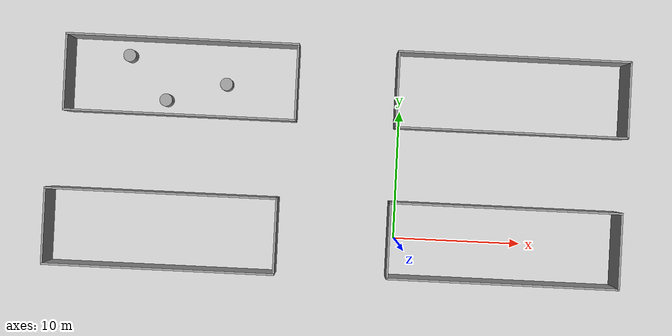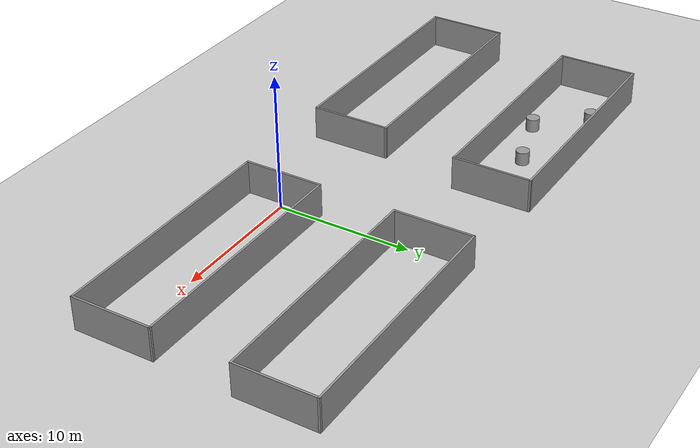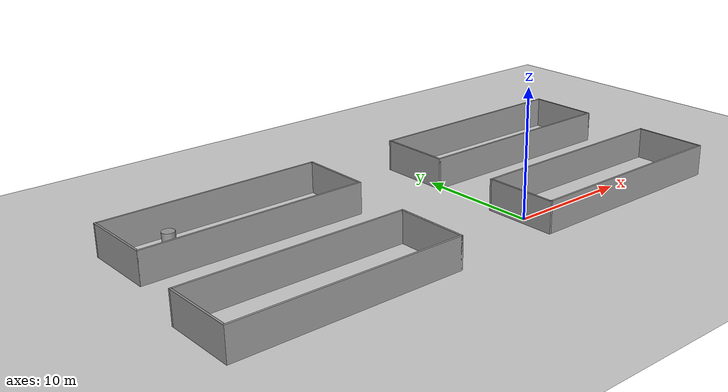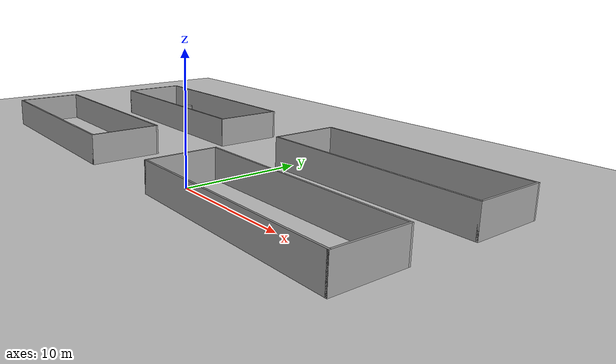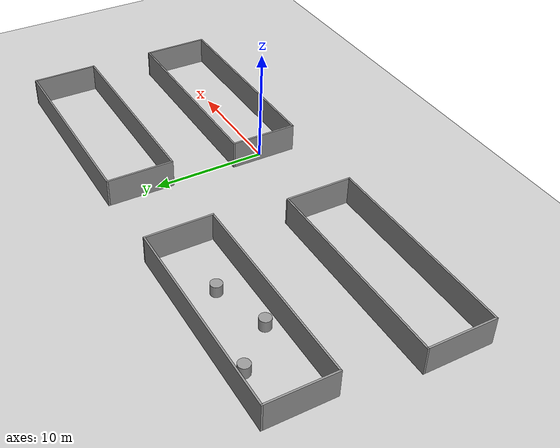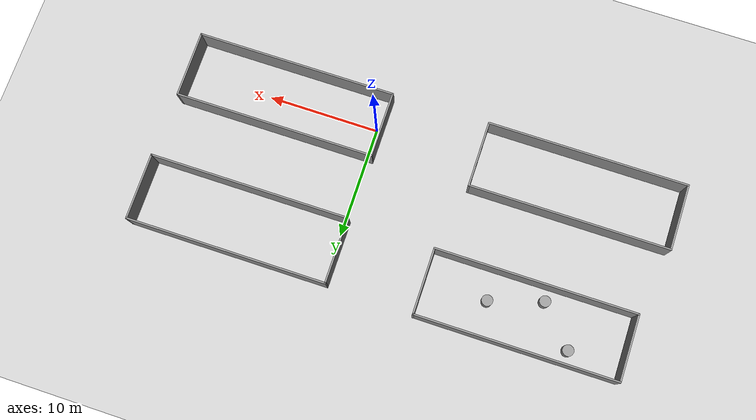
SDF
<sdf version="1.6">
 <world name="default">
  <light name="sun" type="directional">
   <pose>0 0 10 0 -0 0</pose>
   <diffuse>0.8 0.8 0.8 1</diffuse>
   <specular>0.2 0.2 0.2 1</specular>
   <attenuation>
    <range>1000</range>
    <constant>0.9</constant>
    <linear>0.01</linear>
    <quadratic>0.001</quadratic>
   </attenuation>
   <direction>-0.5 0.1 -0.9</direction>
  </light>
  <model name="ground_plane">
   <static>1</static>
   <link name="link">
    <collision name="collision">
     <geometry><plane><normal>0 0 1</normal><size>100 100</size></plane></geometry>
     <surface><friction><ode><mu>100</mu><mu2>50</mu2></ode></friction></surface>
    </collision>
    <visual name="visual">
     <cast_shadows>0</cast_shadows>
     <geometry><plane><normal>0 0 1</normal><size>100 100</size></plane></geometry>
     <material>
      <script><uri>file://media/materials/scripts/gazebo.material</uri><name>Gazebo/Grey</name></script>
     </material>
    </visual>
   </link>
  </model>
  <gravity>0 0 -9.8</gravity>
  <magnetic_field>6e-06 2.3e-05 -4.2e-05</magnetic_field>
  <atmosphere type="adiabatic"/>
  <physics name="default_physics" default="0" type="ode">
   <max_step_size>0.001</max_step_size>
   <real_time_factor>1</real_time_factor>
   <real_time_update_rate>1000</real_time_update_rate>
  </physics>
  <scene><ambient>0.4 0.4 0.4 1</ambient><background>0.7 0.7 0.7 1</background><shadows>1</shadows></scene>
  <spherical_coordinates>
   <surface_model>EARTH_WGS84</surface_model>
   <latitude_deg>0</latitude_deg>
   <longitude_deg>0</longitude_deg>
   <elevation>0</elevation>
   <heading_deg>0</heading_deg>
  </spherical_coordinates>
  <model name="18X6_wall">
   <pose>8.39572 -0.04129 0 0 -0 0</pose>
   <link name="Wall_1">
    <collision name="Wall_1_Collision">
     <geometry><box><size>18 0.15 2.5</size></box></geometry>
     <pose>0 0 1.25 0 -0 0</pose>
    </collision>
    <visual name="Wall_1_Visual">
     <pose>0 0 1.25 0 -0 0</pose>
     <geometry><box><size>18 0.15 2.5</size></box></geometry>
     <material>
      <script><uri>file://media/materials/scripts/gazebo.material</uri><name>Gazebo/Grey</name></script>
      <ambient>1 1 1 1</ambient>
     </material>
     <meta><layer>0</layer></meta>
    </visual>
    <pose>0 -2.925 0 0 -0 0</pose>
   </link>
   <link name="Wall_4">
    <collision name="Wall_4_Collision">
     <geometry><box><size>6 0.15 2.5</size></box></geometry>
     <pose>0 0 1.25 0 -0 0</pose>
    </collision>
    <visual name="Wall_4_Visual">
     <pose>0 0 1.25 0 -0 0</pose>
     <geometry><box><size>6 0.15 2.5</size></box></geometry>
     <material>
      <script><uri>file://media/materials/scripts/gazebo.material</uri><name>Gazebo/Grey</name></script>
      <ambient>1 1 1 1</ambient>
     </material>
     <meta><layer>0</layer></meta>
    </visual>
    <pose>8.925 0 0 0 -0 1.5708</pose>
   </link>
   <link name="Wall_5">
    <collision name="Wall_5_Collision">
     <geometry><box><size>18 0.15 2.5</size></box></geometry>
     <pose>0 0 1.25 0 -0 0</pose>
    </collision>
    <visual name="Wall_5_Visual">
     <pose>0 0 1.25 0 -0 0</pose>
     <geometry><box><size>18 0.15 2.5</size></box></geometry>
     <material>
      <script><uri>file://media/materials/scripts/gazebo.material</uri><name>Gazebo/Grey</name></script>
      <ambient>1 1 1 1</ambient>
     </material>
     <meta><layer>0</layer></meta>
    </visual>
    <pose>0 2.925 0 0 -0 3.14159</pose>
   </link>
   <link name="Wall_6">
    <collision name="Wall_6_Collision">
     <geometry><box><size>6 0.15 2.5</size></box></geometry>
     <pose>0 0 1.25 0 -0 0</pose>
    </collision>
    <visual name="Wall_6_Visual">
     <pose>0 0 1.25 0 -0 0</pose>
     <geometry><box><size>6 0.15 2.5</size></box></geometry>
     <material>
      <script><uri>file://media/materials/scripts/gazebo.material</uri><name>Gazebo/Grey</name></script>
      <ambient>1 1 1 1</ambient>
     </material>
     <meta><layer>0</layer></meta>
    </visual>
    <pose>-8.925 0 0 0 -0 -1.5708</pose>
   </link>
   <static>1</static>
  </model>
  <model name="18X6_wall_clone">
   <pose>8.53895 11.6405 0 0 -0 0</pose>
   <link name="Wall_1">
    <collision name="Wall_1_Collision">
     <geometry><box><size>18 0.15 2.5</size></box></geometry>
     <pose>0 0 1.25 0 -0 0</pose>
    </collision>
    <visual name="Wall_1_Visual">
     <pose>0 0 1.25 0 -0 0</pose>
     <geometry><box><size>18 0.15 2.5</size></box></geometry>
     <material>
      <script><uri>file://media/materials/scripts/gazebo.material</uri><name>Gazebo/Grey</name></script>
      <ambient>1 1 1 1</ambient>
     </material>
     <meta><layer>0</layer></meta>
    </visual>
    <pose>0 -2.925 0 0 -0 0</pose>
   </link>
   <link name="Wall_4">
    <collision name="Wall_4_Collision">
     <geometry><box><size>6 0.15 2.5</size></box></geometry>
     <pose>0 0 1.25 0 -0 0</pose>
    </collision>
    <visual name="Wall_4_Visual">
     <pose>0 0 1.25 0 -0 0</pose>
     <geometry><box><size>6 0.15 2.5</size></box></geometry>
     <material>
      <script><uri>file://media/materials/scripts/gazebo.material</uri><name>Gazebo/Grey</name></script>
      <ambient>1 1 1 1</ambient>
     </material>
     <meta><layer>0</layer></meta>
    </visual>
    <pose>8.925 0 0 0 -0 1.5708</pose>
   </link>
   <link name="Wall_5">
    <collision name="Wall_5_Collision">
     <geometry><box><size>18 0.15 2.5</size></box></geometry>
     <pose>0 0 1.25 0 -0 0</pose>
    </collision>
    <visual name="Wall_5_Visual">
     <pose>0 0 1.25 0 -0 0</pose>
     <geometry><box><size>18 0.15 2.5</size></box></geometry>
     <material>
      <script><uri>file://media/materials/scripts/gazebo.material</uri><name>Gazebo/Grey</name></script>
      <ambient>1 1 1 1</ambient>
     </material>
     <meta><layer>0</layer></meta>
    </visual>
    <pose>0 2.925 0 0 -0 3.14159</pose>
   </link>
   <link name="Wall_6">
    <collision name="Wall_6_Collision">
     <geometry><box><size>6 0.15 2.5</size></box></geometry>
     <pose>0 0 1.25 0 -0 0</pose>
    </collision>
    <visual name="Wall_6_Visual">
     <pose>0 0 1.25 0 -0 0</pose>
     <geometry><box><size>6 0.15 2.5</size></box></geometry>
     <material>
      <script><uri>file://media/materials/scripts/gazebo.material</uri><name>Gazebo/Grey</name></script>
      <ambient>1 1 1 1</ambient>
     </material>
     <meta><layer>0</layer></meta>
    </visual>
    <pose>-8.925 0 0 0 -0 -1.5708</pose>
   </link>
   <static>1</static>
  </model>
  <model name="18X6_wall_clone_0">
   <pose>-17.104 11.8034 0 0 -0 0</pose>
   <link name="Wall_1">
    <collision name="Wall_1_Collision">
     <geometry><box><size>18 0.15 2.5</size></box></geometry>
     <pose>0 0 1.25 0 -0 0</pose>
    </collision>
    <visual name="Wall_1_Visual">
     <pose>0 0 1.25 0 -0 0</pose>
     <geometry><box><size>18 0.15 2.5</size></box></geometry>
     <material>
      <script><uri>file://media/materials/scripts/gazebo.material</uri><name>Gazebo/Grey</name></script>
      <ambient>1 1 1 1</ambient>
     </material>
     <meta><layer>0</layer></meta>
    </visual>
    <pose>0 -2.925 0 0 -0 0</pose>
   </link>
   <link name="Wall_4">
    <collision name="Wall_4_Collision">
     <geometry><box><size>6 0.15 2.5</size></box></geometry>
     <pose>0 0 1.25 0 -0 0</pose>
    </collision>
    <visual name="Wall_4_Visual">
     <pose>0 0 1.25 0 -0 0</pose>
     <geometry><box><size>6 0.15 2.5</size></box></geometry>
     <material>
      <script><uri>file://media/materials/scripts/gazebo.material</uri><name>Gazebo/Grey</name></script>
      <ambient>1 1 1 1</ambient>
     </material>
     <meta><layer>0</layer></meta>
    </visual>
    <pose>8.925 0 0 0 -0 1.5708</pose>
   </link>
   <link name="Wall_5">
    <collision name="Wall_5_Collision">
     <geometry><box><size>18 0.15 2.5</size></box></geometry>
     <pose>0 0 1.25 0 -0 0</pose>
    </collision>
    <visual name="Wall_5_Visual">
     <pose>0 0 1.25 0 -0 0</pose>
     <geometry><box><size>18 0.15 2.5</size></box></geometry>
     <material>
      <script><uri>file://media/materials/scripts/gazebo.material</uri><name>Gazebo/Grey</name></script>
      <ambient>1 1 1 1</ambient>
     </material>
     <meta><layer>0</layer></meta>
    </visual>
    <pose>0 2.925 0 0 -0 3.14159</pose>
   </link>
   <link name="Wall_6">
    <collision name="Wall_6_Collision">
     <geometry><box><size>6 0.15 2.5</size></box></geometry>
     <pose>0 0 1.25 0 -0 0</pose>
    </collision>
    <visual name="Wall_6_Visual">
     <pose>0 0 1.25 0 -0 0</pose>
     <geometry><box><size>6 0.15 2.5</size></box></geometry>
     <material>
      <script><uri>file://media/materials/scripts/gazebo.material</uri><name>Gazebo/Grey</name></script>
      <ambient>1 1 1 1</ambient>
     </material>
     <meta><layer>0</layer></meta>
    </visual>
    <pose>-8.925 0 0 0 -0 -1.5708</pose>
   </link>
   <static>1</static>
  </model>
  <model name="18X6_wall_clone_1">
   <pose>-18.2243 -0.14438 0 0 -0 0</pose>
   <link name="Wall_1">
    <collision name="Wall_1_Collision">
     <geometry><box><size>18 0.15 2.5</size></box></geometry>
     <pose>0 0 1.25 0 -0 0</pose>
    </collision>
    <visual name="Wall_1_Visual">
     <pose>0 0 1.25 0 -0 0</pose>
     <geometry><box><size>18 0.15 2.5</size></box></geometry>
     <material>
      <script><uri>file://media/materials/scripts/gazebo.material</uri><name>Gazebo/Grey</name></script>
      <ambient>1 1 1 1</ambient>
     </material>
     <meta><layer>0</layer></meta>
    </visual>
    <pose>0 -2.925 0 0 -0 0</pose>
   </link>
   <link name="Wall_4">
    <collision name="Wall_4_Collision">
     <geometry><box><size>6 0.15 2.5</size></box></geometry>
     <pose>0 0 1.25 0 -0 0</pose>
    </collision>
    <visual name="Wall_4_Visual">
     <pose>0 0 1.25 0 -0 0</pose>
     <geometry><box><size>6 0.15 2.5</size></box></geometry>
     <material>
      <script><uri>file://media/materials/scripts/gazebo.material</uri><name>Gazebo/Grey</name></script>
      <ambient>1 1 1 1</ambient>
     </material>
     <meta><layer>0</layer></meta>
    </visual>
    <pose>8.925 0 0 0 -0 1.5708</pose>
   </link>
   <link name="Wall_5">
    <collision name="Wall_5_Collision">
     <geometry><box><size>18 0.15 2.5</size></box></geometry>
     <pose>0 0 1.25 0 -0 0</pose>
    </collision>
    <visual name="Wall_5_Visual">
     <pose>0 0 1.25 0 -0 0</pose>
     <geometry><box><size>18 0.15 2.5</size></box></geometry>
     <material>
      <script><uri>file://media/materials/scripts/gazebo.material</uri><name>Gazebo/Grey</name></script>
      <ambient>1 1 1 1</ambient>
     </material>
     <meta><layer>0</layer></meta>
    </visual>
    <pose>0 2.925 0 0 -0 3.14159</pose>
   </link>
   <link name="Wall_6">
    <collision name="Wall_6_Collision">
     <geometry><box><size>6 0.15 2.5</size></box></geometry>
     <pose>0 0 1.25 0 -0 0</pose>
    </collision>
    <visual name="Wall_6_Visual">
     <pose>0 0 1.25 0 -0 0</pose>
     <geometry><box><size>6 0.15 2.5</size></box></geometry>
     <material>
      <script><uri>file://media/materials/scripts/gazebo.material</uri><name>Gazebo/Grey</name></script>
      <ambient>1 1 1 1</ambient>
     </material>
     <meta><layer>0</layer></meta>
    </visual>
    <pose>-8.925 0 0 0 -0 -1.5708</pose>
   </link>
   <static>1</static>
  </model>
  <model name="unit_cylinder">
   <pose>-13.7561 11.5105 0.499998 3e-06 4e-06 -0</pose>
   <link name="link">
    <inertial>
     <mass>1</mass>
     <inertia><ixx>0.145833</ixx><ixy>0</ixy><ixz>0</ixz><iyy>0.145833</iyy><iyz>0</iyz><izz>0.125</izz></inertia>
    </inertial>
    <collision name="collision">
     <geometry><cylinder><radius>0.5</radius><length>1</length></cylinder></geometry>
    </collision>
    <visual name="visual">
     <geometry><cylinder><radius>0.5</radius><length>1</length></cylinder></geometry>
     <material>
      <script><name>Gazebo/Grey</name><uri>file://media/materials/scripts/gazebo.material</uri></script>
     </material>
    </visual>
   </link>
  </model>
  <model name="unit_cylinder_0">
   <pose>-18.453 10.0562 0.499998 3e-06 4e-06 -0</pose>
   <link name="link">
    <inertial>
     <mass>1</mass>
     <inertia><ixx>0.145833</ixx><ixy>0</ixy><ixz>0</ixz><iyy>0.145833</iyy><iyz>0</iyz><izz>0.125</izz></inertia>
    </inertial>
    <collision name="collision">
     <geometry><cylinder><radius>0.5</radius><length>1</length></cylinder></geometry>
    </collision>
    <visual name="visual">
     <geometry><cylinder><radius>0.5</radius><length>1</length></cylinder></geometry>
     <material>
      <script><name>Gazebo/Grey</name><uri>file://media/materials/scripts/gazebo.material</uri></script>
     </material>
    </visual>
   </link>
  </model>
  <model name="unit_cylinder_1">
   <pose>-21.456 13.4219 0.499998 3e-06 -4e-06 0</pose>
   <link name="link">
    <inertial>
     <mass>1</mass>
     <inertia><ixx>0.145833</ixx><ixy>0</ixy><ixz>0</ixz><iyy>0.145833</iyy><iyz>0</iyz><izz>0.125</izz></inertia>
    </inertial>
    <collision name="collision">
     <geometry><cylinder><radius>0.5</radius><length>1</length></cylinder></geometry>
    </collision>
    <visual name="visual">
     <geometry><cylinder><radius>0.5</radius><length>1</length></cylinder></geometry>
     <material>
      <script><name>Gazebo/Grey</name><uri>file://media/materials/scripts/gazebo.material</uri></script>
     </material>
    </visual>
   </link>
  </model>
 </world>
</sdf>
